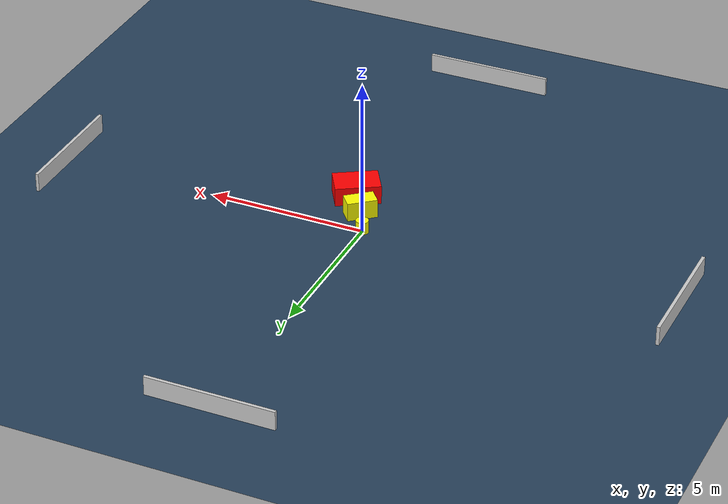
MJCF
<?xml version="1.0" ?>
<mujoco model="generated_environment">
  <option timestep="0.01" integrator="RK4" cone="elliptic"/>
  <default>
    <geom density="1"/>
  </default>
  <asset>
    <texture builtin="gradient" height="3072" name="skybox" rgb1="0.3 0.5 0.7" rgb2="0 0 0" type="skybox" width="512"/>
    <texture builtin="checker" height="300" name="groundplane" rgb1="0.2 0.3 0.4" rgb2="0.1 0.2 0.3" type="2d" width="300"/>
    <material name="groundplane" reflectance="0.2" texrepeat="5 5" texture="groundplane"/>
  </asset>
  <worldbody>
    <light dir="0 0 -1" directional="true" pos="0 0 1.5"/>
    <geom condim="3" friction="0.5 0.005 0.001" material="groundplane" name="floor" pos="0 0 0" size="0 0 0.05" type="plane"/>
    <body name="walls">
      <geom name="wall_1" condim="4" pos="-10.0 0.0 0.3" rgba="0.800000011920929 0.800000011920929 0.800000011920929 1.0" size="0.05 2.0 0.3" type="box"/>
      <geom name="wall_2" condim="4" pos="10.0 0.0 0.3" rgba="0.800000011920929 0.800000011920929 0.800000011920929 1.0" size="0.05 2.0 0.3" type="box"/>
      <geom name="wall_3" condim="4" pos="0.0 -10.0 0.3" rgba="0.800000011920929 0.800000011920929 0.800000011920929 1.0" size="2.0 0.05 0.3" type="box"/>
      <geom name="wall_4" condim="4" pos="0.0 10.0 0.3" rgba="0.800000011920929 0.800000011920929 0.800000011920929 1.0" size="2.0 0.05 0.3" type="box"/>
    </body>
    <body name="robot">
      <joint name="joint_x" type="slide" pos="0 0 0" axis="1 0 0"/>
      <joint name="joint_y" type="slide" pos="0 0 0" axis="0 1 0"/>
      <geom name="robot" type="cylinder" pos="0.0 0.0 0.2" size="0.2 0.2 0.0" mass="5.0" friction="1.0 0.005 0.0001" condim="4" rgba="1.0 1.0 0.0 1.0"/>
    </body>
    <body name="obstacle_1_movable">
      <geom name="obstacle_1_movable" condim="4" pos="0.44256408256910656 -0.8368955262183395 0.3" euler="0 0 39.69993824850829" friction="0.0 0.005 0.001" rgba="1.0 1.0 0.0 1.0" size="0.47058602140008937 0.266878329152766 0.3" type="box" mass="0.1"/>
      <joint type="free"/>
    </body>
    <body name="obstacle_2_static">
      <geom name="obstacle_2_static" condim="4" pos="0.9801902705950387 -1.7412092592119779 0.3" euler="0 0 210.92857120595792" friction="0.0 0.005 0.001" rgba="1.0 0.0 0.0 1.0" size="0.7098719624245122 0.48332566855671066 0.3" type="box"/>
    </body>
  </worldbody>
  <actuator>
    <motor name="actuator_x" joint="joint_x" gear="1" ctrlrange="-1 1"/>
    <motor name="actuator_y" joint="joint_y" gear="1" ctrlrange="-1 1"/>
  </actuator>
</mujoco>
